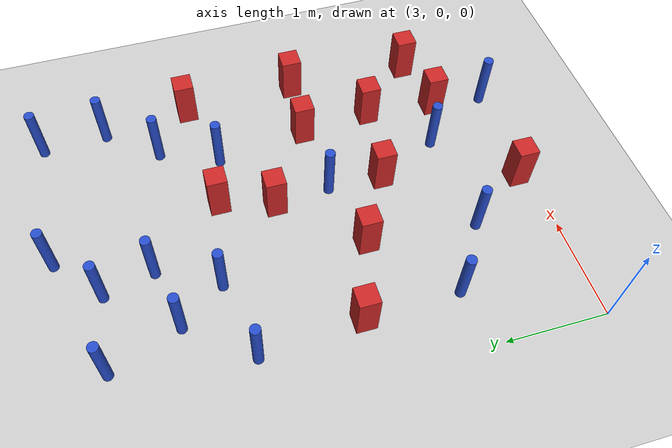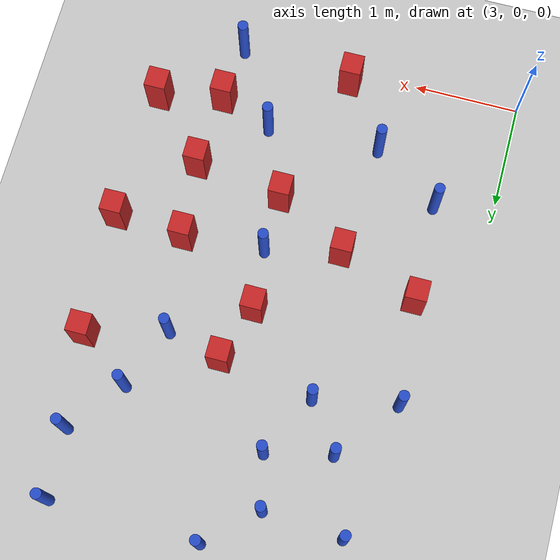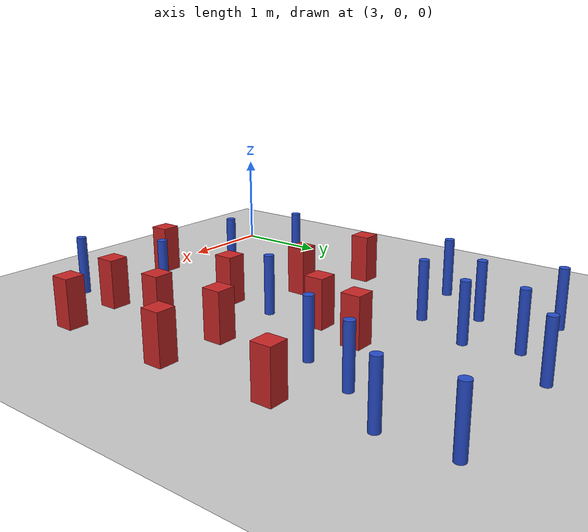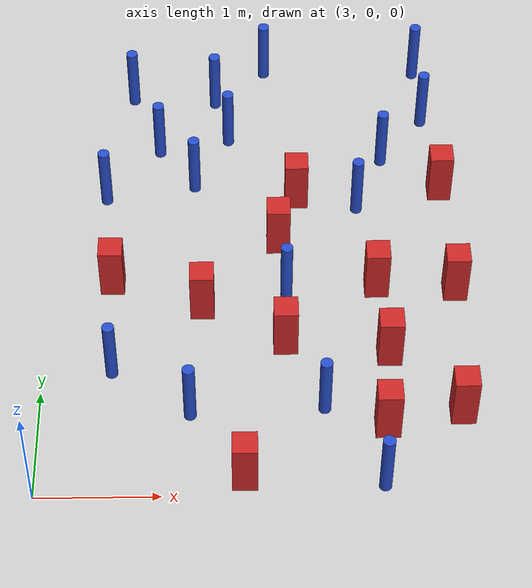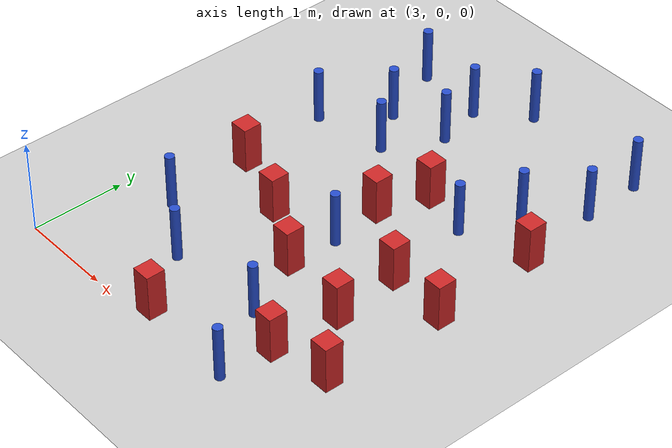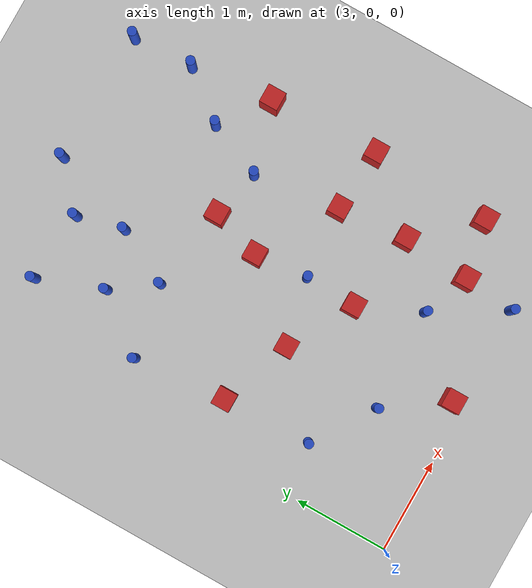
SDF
<sdf version="1.6">
 <world name="default">
  <model name="ground_plane">
   <static>1</static>
   <link name="link">
    <collision name="collision">
     <geometry><plane><normal>0 0 1</normal><size>100 100</size></plane></geometry>
     <surface><friction><ode><mu>100</mu><mu2>50</mu2></ode></friction></surface>
    </collision>
    <visual name="visual">
     <cast_shadows>0</cast_shadows>
     <geometry><plane><normal>0 0 1</normal><size>100 100</size></plane></geometry>
     <material>
      <ambient>1.0 1.0 1.0 1.0</ambient>
      <diffuse>0.8 0.8 0.8 1.0</diffuse>
      <specular>0.01 0.01 0.01 1.000000</specular>
     </material>
    </visual>
   </link>
  </model>
  <model name="pole_obstacle10">
   <static>true</static>
   <pose>4.20949864032 0.770058361071 7.38925637345e-09 -8.47170692799e-08 1.24976765038e-08 -1.74513093018e-07</pose>
   <link name="link">
    <pose>0 0 0.3 0 -0 0</pose>
    <inertial>
     <mass>1</mass>
     <inertia><ixx>0.145833</ixx><ixy>0</ixy><ixz>0</ixz><iyy>0.145833</iyy><iyz>0</iyz><izz>0.125</izz></inertia>
    </inertial>
    <collision name="collision">
     <geometry><cylinder><radius>0.05</radius><length>.6</length></cylinder></geometry>
    </collision>
    <visual name="visual">
     <geometry><cylinder><radius>0.05</radius><length>.6</length></cylinder></geometry>
     <material>
      <script><name>Gazebo/Blue</name><uri>file://media/materials/scripts/gazebo.material</uri></script>
     </material>
    </visual>
   </link>
  </model>
  <model name="pole_obstacle14">
   <static>true</static>
   <pose>5.28901740796 0.820832074748 7.38925637345e-09 -8.47170692799e-08 1.24976765038e-08 -1.74513093018e-07</pose>
   <link name="link">
    <pose>0 0 0.3 0 -0 0</pose>
    <inertial>
     <mass>1</mass>
     <inertia><ixx>0.145833</ixx><ixy>0</ixy><ixz>0</ixz><iyy>0.145833</iyy><iyz>0</iyz><izz>0.125</izz></inertia>
    </inertial>
    <collision name="collision">
     <geometry><cylinder><radius>0.05</radius><length>.6</length></cylinder></geometry>
    </collision>
    <visual name="visual">
     <geometry><cylinder><radius>0.05</radius><length>.6</length></cylinder></geometry>
     <material>
      <script><name>Gazebo/Blue</name><uri>file://media/materials/scripts/gazebo.material</uri></script>
     </material>
    </visual>
   </link>
  </model>
  <model name="square_post_obstacle32">
   <static>true</static>
   <pose>5.12099328849 3.12723572732 1.91545236811e-07 -7.35059704564e-06 1.12565212e-07 2.39332434364e-05</pose>
   <link name="link">
    <pose>0 0 0.25 0 -0 0</pose>
    <inertial>
     <mass>100</mass>
     <inertia>
      <ixx>0.166667</ixx>
      <ixy>0</ixy>
      <ixz>0</ixz>
      <iyy>0.166667</iyy>
      <iyz>0</iyz>
      <izz>0.166667</izz>
     </inertia>
    </inertial>
    <collision name="collision"><geometry><box><size>.2 .2 .5</size></box></geometry></collision>
    <visual name="visual">
     <geometry><box><size>.2 .2 .5</size></box></geometry>
     <material>
      <script><name>Gazebo/Red</name><uri>file://media/materials/scripts/gazebo.material</uri></script>
     </material>
    </visual>
   </link>
  </model>
  <model name="pole_obstacle32">
   <static>true</static>
   <pose>5.8984603066 3.59196779917 7.38925637345e-09 -8.47170692798e-08 1.24976764937e-08 -1.74513093023e-07</pose>
   <link name="link">
    <pose>0 0 0.3 0 -0 0</pose>
    <inertial>
     <mass>1</mass>
     <inertia><ixx>0.145833</ixx><ixy>0</ixy><ixz>0</ixz><iyy>0.145833</iyy><iyz>0</iyz><izz>0.125</izz></inertia>
    </inertial>
    <collision name="collision">
     <geometry><cylinder><radius>0.05</radius><length>.6</length></cylinder></geometry>
    </collision>
    <visual name="visual">
     <geometry><cylinder><radius>0.05</radius><length>.6</length></cylinder></geometry>
     <material>
      <script><name>Gazebo/Blue</name><uri>file://media/materials/scripts/gazebo.material</uri></script>
     </material>
    </visual>
   </link>
  </model>
  <model name="pole_obstacle42">
   <static>true</static>
   <pose>4.22462793576 3.28520064528 7.38925637345e-09 -8.47170692798e-08 1.24976764937e-08 -1.74513093023e-07</pose>
   <link name="link">
    <pose>0 0 0.3 0 -0 0</pose>
    <inertial>
     <mass>1</mass>
     <inertia><ixx>0.145833</ixx><ixy>0</ixy><ixz>0</ixz><iyy>0.145833</iyy><iyz>0</iyz><izz>0.125</izz></inertia>
    </inertial>
    <collision name="collision">
     <geometry><cylinder><radius>0.05</radius><length>.6</length></cylinder></geometry>
    </collision>
    <visual name="visual">
     <geometry><cylinder><radius>0.05</radius><length>.6</length></cylinder></geometry>
     <material>
      <script><name>Gazebo/Blue</name><uri>file://media/materials/scripts/gazebo.material</uri></script>
     </material>
    </visual>
   </link>
  </model>
  <model name="square_post_obstacle40">
   <static>true</static>
   <pose>4.98894578105 1.48097292992 1.91545236811e-07 -7.35059704564e-06 1.12565212e-07 2.39332434364e-05</pose>
   <link name="link">
    <pose>0 0 0.25 0 -0 0</pose>
    <inertial>
     <mass>100</mass>
     <inertia>
      <ixx>0.166667</ixx>
      <ixy>0</ixy>
      <ixz>0</ixz>
      <iyy>0.166667</iyy>
      <iyz>0</iyz>
      <izz>0.166667</izz>
     </inertia>
    </inertial>
    <collision name="collision"><geometry><box><size>.2 .2 .5</size></box></geometry></collision>
    <visual name="visual">
     <geometry><box><size>.2 .2 .5</size></box></geometry>
     <material>
      <script><name>Gazebo/Red</name><uri>file://media/materials/scripts/gazebo.material</uri></script>
     </material>
    </visual>
   </link>
  </model>
  <model name="square_post_obstacle67">
   <static>true</static>
   <pose>6.43560135954 2.04056012194 1.91545236811e-07 -7.35059704564e-06 1.12565212e-07 2.39332434364e-05</pose>
   <link name="link">
    <pose>0 0 0.25 0 -0 0</pose>
    <inertial>
     <mass>100</mass>
     <inertia>
      <ixx>0.166667</ixx>
      <ixy>0</ixy>
      <ixz>0</ixz>
      <iyy>0.166667</iyy>
      <iyz>0</iyz>
      <izz>0.166667</izz>
     </inertia>
    </inertial>
    <collision name="collision"><geometry><box><size>.2 .2 .5</size></box></geometry></collision>
    <visual name="visual">
     <geometry><box><size>.2 .2 .5</size></box></geometry>
     <material>
      <script><name>Gazebo/Red</name><uri>file://media/materials/scripts/gazebo.material</uri></script>
     </material>
    </visual>
   </link>
  </model>
  <model name="pole_obstacle71">
   <static>true</static>
   <pose>5.65012466 3.00601890965 7.38925637345e-09 -8.47170692798e-08 1.24976764937e-08 -1.74513093023e-07</pose>
   <link name="link">
    <pose>0 0 0.3 0 -0 0</pose>
    <inertial>
     <mass>1</mass>
     <inertia><ixx>0.145833</ixx><ixy>0</ixy><ixz>0</ixz><iyy>0.145833</iyy><iyz>0</iyz><izz>0.125</izz></inertia>
    </inertial>
    <collision name="collision">
     <geometry><cylinder><radius>0.05</radius><length>.6</length></cylinder></geometry>
    </collision>
    <visual name="visual">
     <geometry><cylinder><radius>0.05</radius><length>.6</length></cylinder></geometry>
     <material>
      <script><name>Gazebo/Blue</name><uri>file://media/materials/scripts/gazebo.material</uri></script>
     </material>
    </visual>
   </link>
  </model>
  <model name="pole_obstacle78">
   <static>true</static>
   <pose>6.26691705236 4.74349010426 7.38925637345e-09 -8.47170692796e-08 1.24976764786e-08 -1.74513093032e-07</pose>
   <link name="link">
    <pose>0 0 0.3 0 -0 0</pose>
    <inertial>
     <mass>1</mass>
     <inertia><ixx>0.145833</ixx><ixy>0</ixy><ixz>0</ixz><iyy>0.145833</iyy><iyz>0</iyz><izz>0.125</izz></inertia>
    </inertial>
    <collision name="collision">
     <geometry><cylinder><radius>0.05</radius><length>.6</length></cylinder></geometry>
    </collision>
    <visual name="visual">
     <geometry><cylinder><radius>0.05</radius><length>.6</length></cylinder></geometry>
     <material>
      <script><name>Gazebo/Blue</name><uri>file://media/materials/scripts/gazebo.material</uri></script>
     </material>
    </visual>
   </link>
  </model>
  <model name="pole_obstacle90">
   <static>true</static>
   <pose>5.0090664267 2.02633698189 7.38925637345e-09 -8.47170692799e-08 1.24976765078e-08 -1.74513093016e-07</pose>
   <link name="link">
    <pose>0 0 0.3 0 -0 0</pose>
    <inertial>
     <mass>1</mass>
     <inertia><ixx>0.145833</ixx><ixy>0</ixy><ixz>0</ixz><iyy>0.145833</iyy><iyz>0</iyz><izz>0.125</izz></inertia>
    </inertial>
    <collision name="collision">
     <geometry><cylinder><radius>0.05</radius><length>.6</length></cylinder></geometry>
    </collision>
    <visual name="visual">
     <geometry><cylinder><radius>0.05</radius><length>.6</length></cylinder></geometry>
     <material>
      <script><name>Gazebo/Blue</name><uri>file://media/materials/scripts/gazebo.material</uri></script>
     </material>
    </visual>
   </link>
  </model>
  <model name="pole_obstacle98">
   <static>true</static>
   <pose>4.52409720729 3.86716382761 7.38925637345e-09 -8.47170692798e-08 1.24976764937e-08 -1.74513093023e-07</pose>
   <link name="link">
    <pose>0 0 0.3 0 -0 0</pose>
    <inertial>
     <mass>1</mass>
     <inertia><ixx>0.145833</ixx><ixy>0</ixy><ixz>0</ixz><iyy>0.145833</iyy><iyz>0</iyz><izz>0.125</izz></inertia>
    </inertial>
    <collision name="collision">
     <geometry><cylinder><radius>0.05</radius><length>.6</length></cylinder></geometry>
    </collision>
    <visual name="visual">
     <geometry><cylinder><radius>0.05</radius><length>.6</length></cylinder></geometry>
     <material>
      <script><name>Gazebo/Blue</name><uri>file://media/materials/scripts/gazebo.material</uri></script>
     </material>
    </visual>
   </link>
  </model>
  <model name="square_post_obstacle90">
   <static>true</static>
   <pose>5.83918725358 1.35174453937 1.91545236811e-07 -7.35059704564e-06 1.12565212e-07 2.39332434364e-05</pose>
   <link name="link">
    <pose>0 0 0.25 0 -0 0</pose>
    <inertial>
     <mass>100</mass>
     <inertia>
      <ixx>0.166667</ixx>
      <ixy>0</ixy>
      <ixz>0</ixz>
      <iyy>0.166667</iyy>
      <iyz>0</iyz>
      <izz>0.166667</izz>
     </inertia>
    </inertial>
    <collision name="collision"><geometry><box><size>.2 .2 .5</size></box></geometry></collision>
    <visual name="visual">
     <geometry><box><size>.2 .2 .5</size></box></geometry>
     <material>
      <script><name>Gazebo/Red</name><uri>file://media/materials/scripts/gazebo.material</uri></script>
     </material>
    </visual>
   </link>
  </model>
  <model name="pole_obstacle103">
   <static>true</static>
   <pose>5.73049005723 0.0751609560764 7.38925637345e-09 -8.47170692799e-08 1.24976765066e-08 -1.74513093016e-07</pose>
   <link name="link">
    <pose>0 0 0.3 0 -0 0</pose>
    <inertial>
     <mass>1</mass>
     <inertia><ixx>0.145833</ixx><ixy>0</ixy><ixz>0</ixz><iyy>0.145833</iyy><iyz>0</iyz><izz>0.125</izz></inertia>
    </inertial>
    <collision name="collision">
     <geometry><cylinder><radius>0.05</radius><length>.6</length></cylinder></geometry>
    </collision>
    <visual name="visual">
     <geometry><cylinder><radius>0.05</radius><length>.6</length></cylinder></geometry>
     <material>
      <script><name>Gazebo/Blue</name><uri>file://media/materials/scripts/gazebo.material</uri></script>
     </material>
    </visual>
   </link>
  </model>
  <model name="pole_obstacle106">
   <static>true</static>
   <pose>4.85837339135 4.77291450514 7.38925637345e-09 -8.47170692796e-08 1.24976764786e-08 -1.74513093032e-07</pose>
   <link name="link">
    <pose>0 0 0.3 0 -0 0</pose>
    <inertial>
     <mass>1</mass>
     <inertia><ixx>0.145833</ixx><ixy>0</ixy><ixz>0</ixz><iyy>0.145833</iyy><iyz>0</iyz><izz>0.125</izz></inertia>
    </inertial>
    <collision name="collision">
     <geometry><cylinder><radius>0.05</radius><length>.6</length></cylinder></geometry>
    </collision>
    <visual name="visual">
     <geometry><cylinder><radius>0.05</radius><length>.6</length></cylinder></geometry>
     <material>
      <script><name>Gazebo/Blue</name><uri>file://media/materials/scripts/gazebo.material</uri></script>
     </material>
    </visual>
   </link>
  </model>
  <model name="pole_obstacle129">
   <static>true</static>
   <pose>4.40363573176 4.3644624454 7.38925637345e-09 -8.47170692796e-08 1.24976764786e-08 -1.74513093032e-07</pose>
   <link name="link">
    <pose>0 0 0.3 0 -0 0</pose>
    <inertial>
     <mass>1</mass>
     <inertia><ixx>0.145833</ixx><ixy>0</ixy><ixz>0</ixz><iyy>0.145833</iyy><iyz>0</iyz><izz>0.125</izz></inertia>
    </inertial>
    <collision name="collision">
     <geometry><cylinder><radius>0.05</radius><length>.6</length></cylinder></geometry>
    </collision>
    <visual name="visual">
     <geometry><cylinder><radius>0.05</radius><length>.6</length></cylinder></geometry>
     <material>
      <script><name>Gazebo/Blue</name><uri>file://media/materials/scripts/gazebo.material</uri></script>
     </material>
    </visual>
   </link>
  </model>
  <model name="square_post_obstacle121">
   <static>true</static>
   <pose>4.95187976401 2.59598308313 1.91545236811e-07 -7.35059704564e-06 1.12565212e-07 2.39332434364e-05</pose>
   <link name="link">
    <pose>0 0 0.25 0 -0 0</pose>
    <inertial>
     <mass>100</mass>
     <inertia>
      <ixx>0.166667</ixx>
      <ixy>0</ixy>
      <ixz>0</ixz>
      <iyy>0.166667</iyy>
      <iyz>0</iyz>
      <izz>0.166667</izz>
     </inertia>
    </inertial>
    <collision name="collision"><geometry><box><size>.2 .2 .5</size></box></geometry></collision>
    <visual name="visual">
     <geometry><box><size>.2 .2 .5</size></box></geometry>
     <material>
      <script><name>Gazebo/Red</name><uri>file://media/materials/scripts/gazebo.material</uri></script>
     </material>
    </visual>
   </link>
  </model>
  <model name="square_post_obstacle130">
   <static>true</static>
   <pose>6.39241273967 3.20729984381 1.91545236811e-07 -7.35059704564e-06 1.12565212e-07 2.39332434364e-05</pose>
   <link name="link">
    <pose>0 0 0.25 0 -0 0</pose>
    <inertial>
     <mass>100</mass>
     <inertia>
      <ixx>0.166667</ixx>
      <ixy>0</ixy>
      <ixz>0</ixz>
      <iyy>0.166667</iyy>
      <iyz>0</iyz>
      <izz>0.166667</izz>
     </inertia>
    </inertial>
    <collision name="collision"><geometry><box><size>.2 .2 .5</size></box></geometry></collision>
    <visual name="visual">
     <geometry><box><size>.2 .2 .5</size></box></geometry>
     <material>
      <script><name>Gazebo/Red</name><uri>file://media/materials/scripts/gazebo.material</uri></script>
     </material>
    </visual>
   </link>
  </model>
  <model name="square_post_obstacle136">
   <static>true</static>
   <pose>4.64241341437 0.146112052137 1.91545236811e-07 -7.35059704564e-06 1.12565212e-07 2.39332434364e-05</pose>
   <link name="link">
    <pose>0 0 0.25 0 -0 0</pose>
    <inertial>
     <mass>100</mass>
     <inertia>
      <ixx>0.166667</ixx>
      <ixy>0</ixy>
      <ixz>0</ixz>
      <iyy>0.166667</iyy>
      <iyz>0</iyz>
      <izz>0.166667</izz>
     </inertia>
    </inertial>
    <collision name="collision"><geometry><box><size>.2 .2 .5</size></box></geometry></collision>
    <visual name="visual">
     <geometry><box><size>.2 .2 .5</size></box></geometry>
     <material>
      <script><name>Gazebo/Red</name><uri>file://media/materials/scripts/gazebo.material</uri></script>
     </material>
    </visual>
   </link>
  </model>
  <model name="square_post_obstacle138">
   <static>true</static>
   <pose>5.77258071287 2.08551848247 1.91545236811e-07 -7.35059704564e-06 1.12565212e-07 2.39332434364e-05</pose>
   <link name="link">
    <pose>0 0 0.25 0 -0 0</pose>
    <inertial>
     <mass>100</mass>
     <inertia>
      <ixx>0.166667</ixx>
      <ixy>0</ixy>
      <ixz>0</ixz>
      <iyy>0.166667</iyy>
      <iyz>0</iyz>
      <izz>0.166667</izz>
     </inertia>
    </inertial>
    <collision name="collision"><geometry><box><size>.2 .2 .5</size></box></geometry></collision>
    <visual name="visual">
     <geometry><box><size>.2 .2 .5</size></box></geometry>
     <material>
      <script><name>Gazebo/Red</name><uri>file://media/materials/scripts/gazebo.material</uri></script>
     </material>
    </visual>
   </link>
  </model>
  <model name="square_post_obstacle152">
   <static>true</static>
   <pose>3.53837416609 2.14769283572 1.91545236811e-07 -7.35059704564e-06 1.12565212e-07 2.39332434364e-05</pose>
   <link name="link">
    <pose>0 0 0.25 0 -0 0</pose>
    <inertial>
     <mass>100</mass>
     <inertia>
      <ixx>0.166667</ixx>
      <ixy>0</ixy>
      <ixz>0</ixz>
      <iyy>0.166667</iyy>
      <iyz>0</iyz>
      <izz>0.166667</izz>
     </inertia>
    </inertial>
    <collision name="collision"><geometry><box><size>.2 .2 .5</size></box></geometry></collision>
    <visual name="visual">
     <geometry><box><size>.2 .2 .5</size></box></geometry>
     <material>
      <script><name>Gazebo/Red</name><uri>file://media/materials/scripts/gazebo.material</uri></script>
     </material>
    </visual>
   </link>
  </model>
  <model name="pole_obstacle184">
   <static>true</static>
   <pose>3.90626888729 3.7287185889 7.38925637345e-09 -8.47170692798e-08 1.24976764939e-08 -1.74513093025e-07</pose>
   <link name="link">
    <pose>0 0 0.3 0 -0 0</pose>
    <inertial>
     <mass>1</mass>
     <inertia><ixx>0.145833</ixx><ixy>0</ixy><ixz>0</ixz><iyy>0.145833</iyy><iyz>0</iyz><izz>0.125</izz></inertia>
    </inertial>
    <collision name="collision">
     <geometry><cylinder><radius>0.05</radius><length>.6</length></cylinder></geometry>
    </collision>
    <visual name="visual">
     <geometry><cylinder><radius>0.05</radius><length>.6</length></cylinder></geometry>
     <material>
      <script><name>Gazebo/Blue</name><uri>file://media/materials/scripts/gazebo.material</uri></script>
     </material>
    </visual>
   </link>
  </model>
  <model name="square_post_obstacle188">
   <static>true</static>
   <pose>4.30133216358 1.86766754719 1.91545236811e-07 -7.35059704564e-06 1.12565212e-07 2.39332434364e-05</pose>
   <link name="link">
    <pose>0 0 0.25 0 -0 0</pose>
    <inertial>
     <mass>100</mass>
     <inertia>
      <ixx>0.166667</ixx>
      <ixy>0</ixy>
      <ixz>0</ixz>
      <iyy>0.166667</iyy>
      <iyz>0</iyz>
      <izz>0.166667</izz>
     </inertia>
    </inertial>
    <collision name="collision"><geometry><box><size>.2 .2 .5</size></box></geometry></collision>
    <visual name="visual">
     <geometry><box><size>.2 .2 .5</size></box></geometry>
     <material>
      <script><name>Gazebo/Red</name><uri>file://media/materials/scripts/gazebo.material</uri></script>
     </material>
    </visual>
   </link>
  </model>
  <model name="pole_obstacle203">
   <static>true</static>
   <pose>3.65072068847 4.41955850734 7.38925637345e-09 -8.47170692798e-08 1.24976765033e-08 -1.74513093019e-07</pose>
   <link name="link">
    <pose>0 0 0.3 0 -0 0</pose>
    <inertial>
     <mass>1</mass>
     <inertia><ixx>0.145833</ixx><ixy>0</ixy><ixz>0</ixz><iyy>0.145833</iyy><iyz>0</iyz><izz>0.125</izz></inertia>
    </inertial>
    <collision name="collision">
     <geometry><cylinder><radius>0.05</radius><length>.6</length></cylinder></geometry>
    </collision>
    <visual name="visual">
     <geometry><cylinder><radius>0.05</radius><length>.6</length></cylinder></geometry>
     <material>
      <script><name>Gazebo/Blue</name><uri>file://media/materials/scripts/gazebo.material</uri></script>
     </material>
    </visual>
   </link>
  </model>
  <model name="pole_obstacle211">
   <static>true</static>
   <pose>3.44611258724 3.14090781959 7.38925637345e-09 -8.47170692798e-08 1.24976764939e-08 -1.74513093025e-07</pose>
   <link name="link">
    <pose>0 0 0.3 0 -0 0</pose>
    <inertial>
     <mass>1</mass>
     <inertia><ixx>0.145833</ixx><ixy>0</ixy><ixz>0</ixz><iyy>0.145833</iyy><iyz>0</iyz><izz>0.125</izz></inertia>
    </inertial>
    <collision name="collision">
     <geometry><cylinder><radius>0.05</radius><length>.6</length></cylinder></geometry>
    </collision>
    <visual name="visual">
     <geometry><cylinder><radius>0.05</radius><length>.6</length></cylinder></geometry>
     <material>
      <script><name>Gazebo/Blue</name><uri>file://media/materials/scripts/gazebo.material</uri></script>
     </material>
    </visual>
   </link>
  </model>
  <model name="pole_obstacle216">
   <static>true</static>
   <pose>6.29725184274 4.09321540019 7.38925637345e-09 -8.47170692796e-08 1.24976764786e-08 -1.74513093032e-07</pose>
   <link name="link">
    <pose>0 0 0.3 0 -0 0</pose>
    <inertial>
     <mass>1</mass>
     <inertia><ixx>0.145833</ixx><ixy>0</ixy><ixz>0</ixz><iyy>0.145833</iyy><iyz>0</iyz><izz>0.125</izz></inertia>
    </inertial>
    <collision name="collision">
     <geometry><cylinder><radius>0.05</radius><length>.6</length></cylinder></geometry>
    </collision>
    <visual name="visual">
     <geometry><cylinder><radius>0.05</radius><length>.6</length></cylinder></geometry>
     <material>
      <script><name>Gazebo/Blue</name><uri>file://media/materials/scripts/gazebo.material</uri></script>
     </material>
    </visual>
   </link>
  </model>
  <model name="pole_obstacle218">
   <static>true</static>
   <pose>3.56651351593 1.20079566829 7.38925637345e-09 -8.471706928e-08 1.24976765152e-08 -1.74513093012e-07</pose>
   <link name="link">
    <pose>0 0 0.3 0 -0 0</pose>
    <inertial>
     <mass>1</mass>
     <inertia><ixx>0.145833</ixx><ixy>0</ixy><ixz>0</ixz><iyy>0.145833</iyy><iyz>0</iyz><izz>0.125</izz></inertia>
    </inertial>
    <collision name="collision">
     <geometry><cylinder><radius>0.05</radius><length>.6</length></cylinder></geometry>
    </collision>
    <visual name="visual">
     <geometry><cylinder><radius>0.05</radius><length>.6</length></cylinder></geometry>
     <material>
      <script><name>Gazebo/Blue</name><uri>file://media/materials/scripts/gazebo.material</uri></script>
     </material>
    </visual>
   </link>
  </model>
  <model name="square_post_obstacle212">
   <static>true</static>
   <pose>5.78091595251 0.629837042114 1.91545236811e-07 -7.35059704564e-06 1.12565212e-07 2.39332434364e-05</pose>
   <link name="link">
    <pose>0 0 0.25 0 -0 0</pose>
    <inertial>
     <mass>100</mass>
     <inertia>
      <ixx>0.166667</ixx>
      <ixy>0</ixy>
      <ixz>0</ixz>
      <iyy>0.166667</iyy>
      <iyz>0</iyz>
      <izz>0.166667</izz>
     </inertia>
    </inertial>
    <collision name="collision"><geometry><box><size>.2 .2 .5</size></box></geometry></collision>
    <visual name="visual">
     <geometry><box><size>.2 .2 .5</size></box></geometry>
     <material>
      <script><name>Gazebo/Red</name><uri>file://media/materials/scripts/gazebo.material</uri></script>
     </material>
    </visual>
   </link>
  </model>
  <model name="square_post_obstacle213">
   <static>true</static>
   <pose>6.39042488039 0.755334284908 1.91545236811e-07 -7.35059704564e-06 1.12565212e-07 2.39332434364e-05</pose>
   <link name="link">
    <pose>0 0 0.25 0 -0 0</pose>
    <inertial>
     <mass>100</mass>
     <inertia>
      <ixx>0.166667</ixx>
      <ixy>0</ixy>
      <ixz>0</ixz>
      <iyy>0.166667</iyy>
      <iyz>0</iyz>
      <izz>0.166667</izz>
     </inertia>
    </inertial>
    <collision name="collision"><geometry><box><size>.2 .2 .5</size></box></geometry></collision>
    <visual name="visual">
     <geometry><box><size>.2 .2 .5</size></box></geometry>
     <material>
      <script><name>Gazebo/Red</name><uri>file://media/materials/scripts/gazebo.material</uri></script>
     </material>
    </visual>
   </link>
  </model>
 </world>
</sdf>
